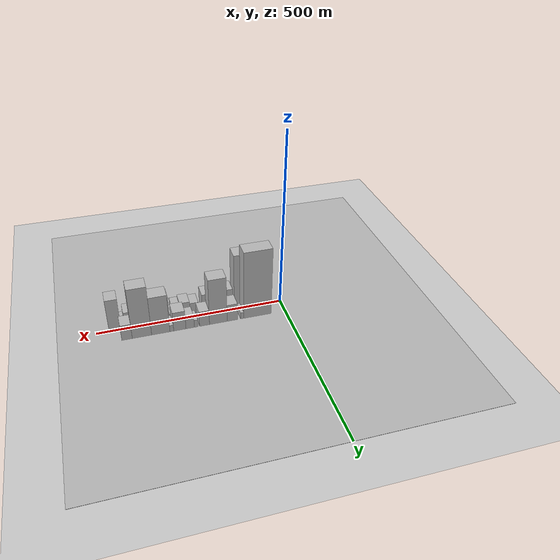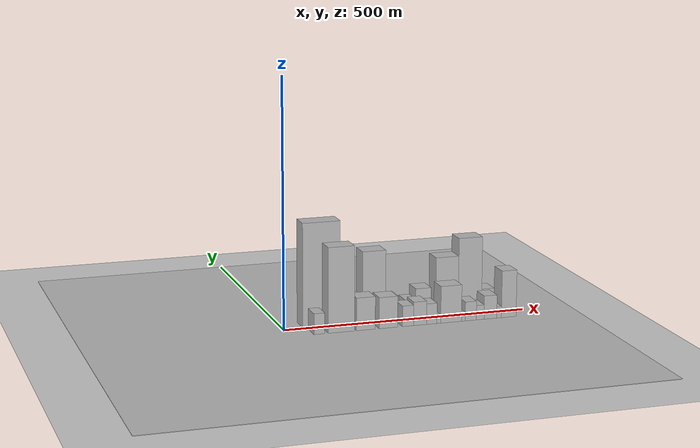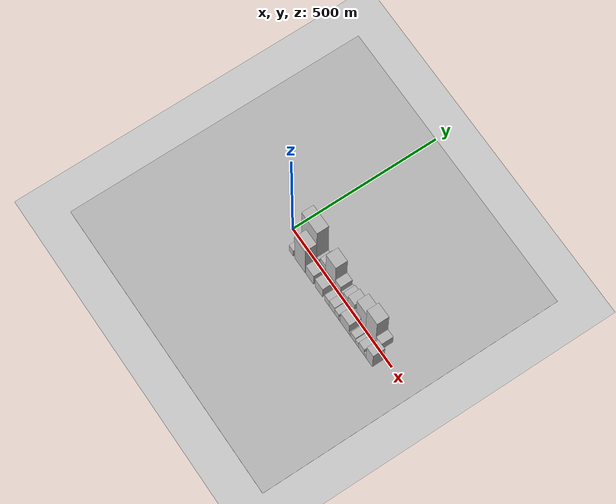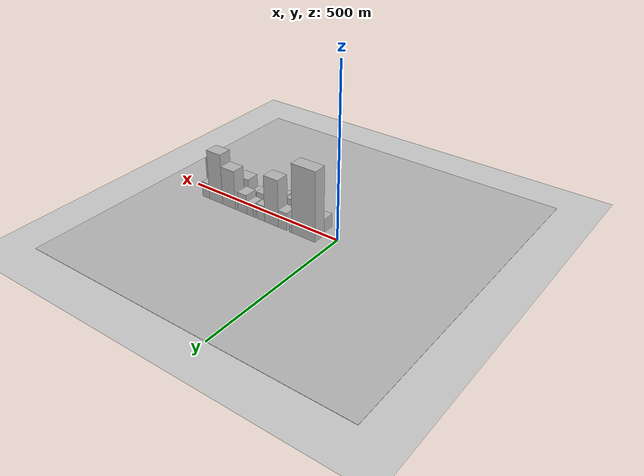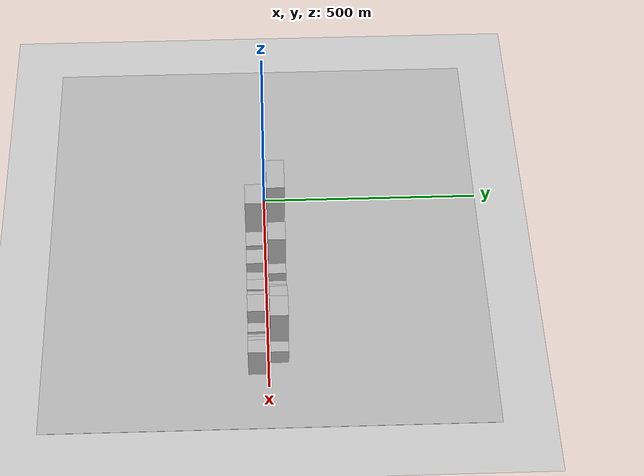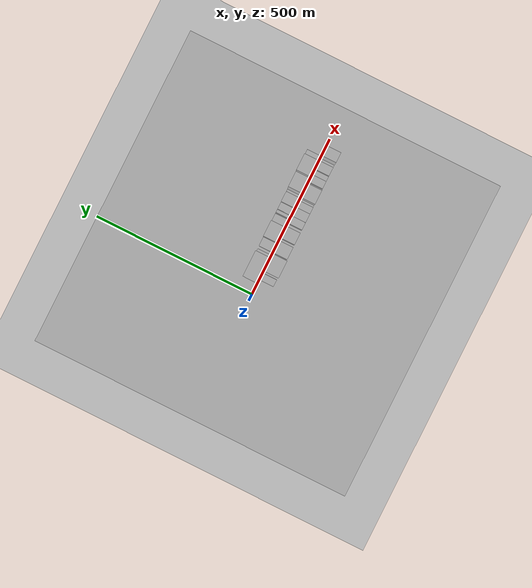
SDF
<?xml version="1.0" encoding="utf-8"?>

<sdf version="1.6">

   <world name="default">

      <gui fullscreen="0">

         <camera name="user_camera">

            <pose>-15 0 4.57585 0 0 0</pose>

            <view_controller>orbit</view_controller>

         </camera>

      </gui>

      <scene>

         <sky>

           <clouds>

             <speed>12</speed>

           </clouds>

         </sky>

         <ambient>0.4 0.4 0.4 1</ambient>

         <background>0.7 0.7 0.7 1</background>

         <shadows>1</shadows>

      </scene>

      <gravity>0 0 -9.8066</gravity>

      <magnetic_field>6e-06 2.3e-05 -4.2e-05</magnetic_field>

      <physics default="0" name="default_physics" type="ode">

         <ode>

            <solver>

               <type>quick</type>

               <iters>10</iters>

               <sor>1.0</sor>

               <use_dynamic_moi_rescaling>0</use_dynamic_moi_rescaling>

            </solver>

            <constraints>

               <cfm>0</cfm>

               <erp>0.2</erp>

               <contact_max_correcting_vel>100</contact_max_correcting_vel>

               <contact_surface_layer>0.001</contact_surface_layer>

            </constraints>

         </ode>

         <max_step_size>0.004</max_step_size>

         <real_time_factor>1</real_time_factor>

         <real_time_update_rate>250</real_time_update_rate>

      </physics>

      <light name="sun" type="directional">

         <cast_shadows>1</cast_shadows>

         <pose>0 0 10 0 0 0</pose>

         <diffuse>0.8 0.8 0.8 1</diffuse>

         <specular>0.2 0.2 0.2 1</specular>

         <attenuation>

            <range>1000</range>

            <constant>0.9</constant>

            <linear>0.01</linear>

            <quadratic>0.001</quadratic>

         </attenuation>

         <direction>-0.5 0.1 -0.9</direction>

      </light>

      <include>

         <name>ground_plane_1</name>

         <uri>model://HANNAS_ground_plane</uri>

         <pose>0 0 0  0 0 0</pose>

      </include>

      <include>

         <name>ground_plane_2</name>

         <uri>model://HANNAS_ground_plane</uri>

         <pose>100 0 0  0 0 0</pose>

      </include>

      <model name="building_1">

         <static>1</static>

         <pose frame="">78.3208 24.5000 0 0.000000 0.000000 1.570796</pose>

         <link name="link">

            <pose frame="">0 0 105.00 0 0 0</pose>

            <collision name="collision">

               <geometry>

                  <box>

                     <size>40.0000 76.6416 210.0000</size>

                  </box>

               </geometry>

               <max_contacts>10</max_contacts>

               <surface>

                  <contact>

                     <ode/>

                  </contact>

                  <bounce/>

                  <friction>

                     <torsional>

                        <ode/>

                     </torsional>

                     <ode/>

                  </friction>

               </surface>

            </collision>

            <visual name="visual">

               <cast_shadows>0</cast_shadows>

               <geometry>

                  <box>

                     <size>40.0000 76.6416 210.0000</size>

                  </box>

               </geometry>

               <material>

                  <script>

                     <uri>model://HANNAS_wall/materials/scripts</uri>

                     <uri>model://HANNAS_wall/materials/textures</uri>

                     <name>vrc/HANNAS_wall</name>

                  </script>

               </material>

            </visual>

            <self_collide>0</self_collide>

            <enable_wind>0</enable_wind>

            <kinematic>0</kinematic>

         </link>

      </model>

      <model name="building_2">

         <static>1</static>

         <pose frame="">121.1165 24.5000 0 0.000000 0.000000 1.570796</pose>

         <link name="link">

            <pose frame="">0 0 10.50 0 0 0</pose>

            <collision name="collision">

               <geometry>

                  <box>

                     <size>40.0000 8.9498 21.0000</size>

                  </box>

               </geometry>

               <max_contacts>10</max_contacts>

               <surface>

                  <contact>

                     <ode/>

                  </contact>

                  <bounce/>

                  <friction>

                     <torsional>

                        <ode/>

                     </torsional>

                     <ode/>

                  </friction>

               </surface>

            </collision>

            <visual name="visual">

               <cast_shadows>0</cast_shadows>

               <geometry>

                  <box>

                     <size>40.0000 8.9498 21.0000</size>

                  </box>

               </geometry>

               <material>

                  <script>

                     <uri>model://HANNAS_wall/materials/scripts</uri>

                     <uri>model://HANNAS_wall/materials/textures</uri>

                     <name>vrc/HANNAS_wall</name>

                  </script>

               </material>

            </visual>

            <self_collide>0</self_collide>

            <enable_wind>0</enable_wind>

            <kinematic>0</kinematic>

         </link>

      </model>

      <model name="building_3">

         <static>1</static>

         <pose frame="">147.8958 24.5000 0 0.000000 0.000000 1.570796</pose>

         <link name="link">

            <pose frame="">0 0 27.00 0 0 0</pose>

            <collision name="collision">

               <geometry>

                  <box>

                     <size>40.0000 28.6089 54.0000</size>

                  </box>

               </geometry>

               <max_contacts>10</max_contacts>

               <surface>

                  <contact>

                     <ode/>

                  </contact>

                  <bounce/>

                  <friction>

                     <torsional>

                        <ode/>

                     </torsional>

                     <ode/>

                  </friction>

               </surface>

            </collision>

            <visual name="visual">

               <cast_shadows>0</cast_shadows>

               <geometry>

                  <box>

                     <size>40.0000 28.6089 54.0000</size>

                  </box>

               </geometry>

               <material>

                  <script>

                     <uri>model://HANNAS_wall/materials/scripts</uri>

                     <uri>model://HANNAS_wall/materials/textures</uri>

                     <name>vrc/HANNAS_wall</name>

                  </script>

               </material>

            </visual>

            <self_collide>0</self_collide>

            <enable_wind>0</enable_wind>

            <kinematic>0</kinematic>

         </link>

      </model>

      <model name="building_4">

         <static>1</static>

         <pose frame="">186.2172 24.5000 0 0.000000 0.000000 1.570796</pose>

         <link name="link">

            <pose frame="">0 0 72.00 0 0 0</pose>

            <collision name="collision">

               <geometry>

                  <box>

                     <size>40.0000 48.0339 144.0000</size>

                  </box>

               </geometry>

               <max_contacts>10</max_contacts>

               <surface>

                  <contact>

                     <ode/>

                  </contact>

                  <bounce/>

                  <friction>

                     <torsional>

                        <ode/>

                     </torsional>

                     <ode/>

                  </friction>

               </surface>

            </collision>

            <visual name="visual">

               <cast_shadows>0</cast_shadows>

               <geometry>

                  <box>

                     <size>40.0000 48.0339 144.0000</size>

                  </box>

               </geometry>

               <material>

                  <script>

                     <uri>model://HANNAS_wall/materials/scripts</uri>

                     <uri>model://HANNAS_wall/materials/textures</uri>

                     <name>vrc/HANNAS_wall</name>

                  </script>

               </material>

            </visual>

            <self_collide>0</self_collide>

            <enable_wind>0</enable_wind>

            <kinematic>0</kinematic>

         </link>

      </model>

      <model name="building_5">

         <static>1</static>

         <pose frame="">223.6654 24.5000 0 0.000000 0.000000 1.570796</pose>

         <link name="link">

            <pose frame="">0 0 24.00 0 0 0</pose>

            <collision name="collision">

               <geometry>

                  <box>

                     <size>40.0000 26.8624 48.0000</size>

                  </box>

               </geometry>

               <max_contacts>10</max_contacts>

               <surface>

                  <contact>

                     <ode/>

                  </contact>

                  <bounce/>

                  <friction>

                     <torsional>

                        <ode/>

                     </torsional>

                     <ode/>

                  </friction>

               </surface>

            </collision>

            <visual name="visual">

               <cast_shadows>0</cast_shadows>

               <geometry>

                  <box>

                     <size>40.0000 26.8624 48.0000</size>

                  </box>

               </geometry>

               <material>

                  <script>

                     <uri>model://HANNAS_wall/materials/scripts</uri>

                     <uri>model://HANNAS_wall/materials/textures</uri>

                     <name>vrc/HANNAS_wall</name>

                  </script>

               </material>

            </visual>

            <self_collide>0</self_collide>

            <enable_wind>0</enable_wind>

            <kinematic>0</kinematic>

         </link>

      </model>

      <model name="building_6">

         <static>1</static>

         <pose frame="">246.1010 24.5000 0 0.000000 0.000000 1.570796</pose>

         <link name="link">

            <pose frame="">0 0 12.00 0 0 0</pose>

            <collision name="collision">

               <geometry>

                  <box>

                     <size>40.0000 10.0088 24.0000</size>

                  </box>

               </geometry>

               <max_contacts>10</max_contacts>

               <surface>

                  <contact>

                     <ode/>

                  </contact>

                  <bounce/>

                  <friction>

                     <torsional>

                        <ode/>

                     </torsional>

                     <ode/>

                  </friction>

               </surface>

            </collision>

            <visual name="visual">

               <cast_shadows>0</cast_shadows>

               <geometry>

                  <box>

                     <size>40.0000 10.0088 24.0000</size>

                  </box>

               </geometry>

               <material>

                  <script>

                     <uri>model://HANNAS_wall/materials/scripts</uri>

                     <uri>model://HANNAS_wall/materials/textures</uri>

                     <name>vrc/HANNAS_wall</name>

                  </script>

               </material>

            </visual>

            <self_collide>0</self_collide>

            <enable_wind>0</enable_wind>

            <kinematic>0</kinematic>

         </link>

      </model>

      <model name="building_7">

         <static>1</static>

         <pose frame="">262.2729 24.5000 0 0.000000 0.000000 1.570796</pose>

         <link name="link">

            <pose frame="">0 0 19.50 0 0 0</pose>

            <collision name="collision">

               <geometry>

                  <box>

                     <size>40.0000 22.3350 39.0000</size>

                  </box>

               </geometry>

               <max_contacts>10</max_contacts>

               <surface>

                  <contact>

                     <ode/>

                  </contact>

                  <bounce/>

                  <friction>

                     <torsional>

                        <ode/>

                     </torsional>

                     <ode/>

                  </friction>

               </surface>

            </collision>

            <visual name="visual">

               <cast_shadows>0</cast_shadows>

               <geometry>

                  <box>

                     <size>40.0000 22.3350 39.0000</size>

                  </box>

               </geometry>

               <material>

                  <script>

                     <uri>model://HANNAS_wall/materials/scripts</uri>

                     <uri>model://HANNAS_wall/materials/textures</uri>

                     <name>vrc/HANNAS_wall</name>

                  </script>

               </material>

            </visual>

            <self_collide>0</self_collide>

            <enable_wind>0</enable_wind>

            <kinematic>0</kinematic>

         </link>

      </model>

      <model name="building_8">

         <static>1</static>

         <pose frame="">289.6527 24.5000 0 0.000000 0.000000 1.570796</pose>

         <link name="link">

            <pose frame="">0 0 30.00 0 0 0</pose>

            <collision name="collision">

               <geometry>

                  <box>

                     <size>40.0000 32.4248 60.0000</size>

                  </box>

               </geometry>

               <max_contacts>10</max_contacts>

               <surface>

                  <contact>

                     <ode/>

                  </contact>

                  <bounce/>

                  <friction>

                     <torsional>

                        <ode/>

                     </torsional>

                     <ode/>

                  </friction>

               </surface>

            </collision>

            <visual name="visual">

               <cast_shadows>0</cast_shadows>

               <geometry>

                  <box>

                     <size>40.0000 32.4248 60.0000</size>

                  </box>

               </geometry>

               <material>

                  <script>

                     <uri>model://HANNAS_wall/materials/scripts</uri>

                     <uri>model://HANNAS_wall/materials/textures</uri>

                     <name>vrc/HANNAS_wall</name>

                  </script>

               </material>

            </visual>

            <self_collide>0</self_collide>

            <enable_wind>0</enable_wind>

            <kinematic>0</kinematic>

         </link>

      </model>

      <model name="building_9">

         <static>1</static>

         <pose frame="">310.7934 24.5000 0 0.000000 0.000000 1.570796</pose>

         <link name="link">

            <pose frame="">0 0 10.50 0 0 0</pose>

            <collision name="collision">

               <geometry>

                  <box>

                     <size>40.0000 9.8566 21.0000</size>

                  </box>

               </geometry>

               <max_contacts>10</max_contacts>

               <surface>

                  <contact>

                     <ode/>

                  </contact>

                  <bounce/>

                  <friction>

                     <torsional>

                        <ode/>

                     </torsional>

                     <ode/>

                  </friction>

               </surface>

            </collision>

            <visual name="visual">

               <cast_shadows>0</cast_shadows>

               <geometry>

                  <box>

                     <size>40.0000 9.8566 21.0000</size>

                  </box>

               </geometry>

               <material>

                  <script>

                     <uri>model://HANNAS_wall/materials/scripts</uri>

                     <uri>model://HANNAS_wall/materials/textures</uri>

                     <name>vrc/HANNAS_wall</name>

                  </script>

               </material>

            </visual>

            <self_collide>0</self_collide>

            <enable_wind>0</enable_wind>

            <kinematic>0</kinematic>

         </link>

      </model>

      <model name="building_10">

         <static>1</static>

         <pose frame="">339.5127 24.5000 0 0.000000 0.000000 1.570796</pose>

         <link name="link">

            <pose frame="">0 0 60.00 0 0 0</pose>

            <collision name="collision">

               <geometry>

                  <box>

                     <size>40.0000 47.5821 120.0000</size>

                  </box>

               </geometry>

               <max_contacts>10</max_contacts>

               <surface>

                  <contact>

                     <ode/>

                  </contact>

                  <bounce/>

                  <friction>

                     <torsional>

                        <ode/>

                     </torsional>

                     <ode/>

                  </friction>

               </surface>

            </collision>

            <visual name="visual">

               <cast_shadows>0</cast_shadows>

               <geometry>

                  <box>

                     <size>40.0000 47.5821 120.0000</size>

                  </box>

               </geometry>

               <material>

                  <script>

                     <uri>model://HANNAS_wall/materials/scripts</uri>

                     <uri>model://HANNAS_wall/materials/textures</uri>

                     <name>vrc/HANNAS_wall</name>

                  </script>

               </material>

            </visual>

            <self_collide>0</self_collide>

            <enable_wind>0</enable_wind>

            <kinematic>0</kinematic>

         </link>

      </model>

      <model name="building_11">

         <static>1</static>

         <pose frame="">388.2633 24.5000 0 0.000000 0.000000 1.570796</pose>

         <link name="link">

            <pose frame="">0 0 78.00 0 0 0</pose>

            <collision name="collision">

               <geometry>

                  <box>

                     <size>40.0000 49.9190 156.0000</size>

                  </box>

               </geometry>

               <max_contacts>10</max_contacts>

               <surface>

                  <contact>

                     <ode/>

                  </contact>

                  <bounce/>

                  <friction>

                     <torsional>

                        <ode/>

                     </torsional>

                     <ode/>

                  </friction>

               </surface>

            </collision>

            <visual name="visual">

               <cast_shadows>0</cast_shadows>

               <geometry>

                  <box>

                     <size>40.0000 49.9190 156.0000</size>

                  </box>

               </geometry>

               <material>

                  <script>

                     <uri>model://HANNAS_wall/materials/scripts</uri>

                     <uri>model://HANNAS_wall/materials/textures</uri>

                     <name>vrc/HANNAS_wall</name>

                  </script>

               </material>

            </visual>

            <self_collide>0</self_collide>

            <enable_wind>0</enable_wind>

            <kinematic>0</kinematic>

         </link>

      </model>

      <model name="building_12">

         <static>1</static>

         <pose frame="">426.5373 24.5000 0 0.000000 0.000000 1.570796</pose>

         <link name="link">

            <pose frame="">0 0 24.00 0 0 0</pose>

            <collision name="collision">

               <geometry>

                  <box>

                     <size>40.0000 26.6289 48.0000</size>

                  </box>

               </geometry>

               <max_contacts>10</max_contacts>

               <surface>

                  <contact>

                     <ode/>

                  </contact>

                  <bounce/>

                  <friction>

                     <torsional>

                        <ode/>

                     </torsional>

                     <ode/>

                  </friction>

               </surface>

            </collision>

            <visual name="visual">

               <cast_shadows>0</cast_shadows>

               <geometry>

                  <box>

                     <size>40.0000 26.6289 48.0000</size>

                  </box>

               </geometry>

               <material>

                  <script>

                     <uri>model://HANNAS_wall/materials/scripts</uri>

                     <uri>model://HANNAS_wall/materials/textures</uri>

                     <name>vrc/HANNAS_wall</name>

                  </script>

               </material>

            </visual>

            <self_collide>0</self_collide>

            <enable_wind>0</enable_wind>

            <kinematic>0</kinematic>

         </link>

      </model>

      <model name="building_13">

         <static>1</static>

         <pose frame="">58.9713 -24.5000 0 0.000000 0.000000 1.570796</pose>

         <link name="link">

            <pose frame="">0 0 21.00 0 0 0</pose>

            <collision name="collision">

               <geometry>

                  <box>

                     <size>40.0000 21.9426 42.0000</size>

                  </box>

               </geometry>

               <max_contacts>10</max_contacts>

               <surface>

                  <contact>

                     <ode/>

                  </contact>

                  <bounce/>

                  <friction>

                     <torsional>

                        <ode/>

                     </torsional>

                     <ode/>

                  </friction>

               </surface>

            </collision>

            <visual name="visual">

               <cast_shadows>0</cast_shadows>

               <geometry>

                  <box>

                     <size>40.0000 21.9426 42.0000</size>

                  </box>

               </geometry>

               <material>

                  <script>

                     <uri>model://HANNAS_wall/materials/scripts</uri>

                     <uri>model://HANNAS_wall/materials/textures</uri>

                     <name>vrc/HANNAS_wall</name>

                  </script>

               </material>

            </visual>

            <self_collide>0</self_collide>

            <enable_wind>0</enable_wind>

            <kinematic>0</kinematic>

         </link>

      </model>

      <model name="building_14">

         <static>1</static>

         <pose frame="">103.4341 -24.5000 0 0.000000 0.000000 1.570796</pose>

         <link name="link">

            <pose frame="">0 0 85.50 0 0 0</pose>

            <collision name="collision">

               <geometry>

                  <box>

                     <size>40.0000 52.9830 171.0000</size>

                  </box>

               </geometry>

               <max_contacts>10</max_contacts>

               <surface>

                  <contact>

                     <ode/>

                  </contact>

                  <bounce/>

                  <friction>

                     <torsional>

                        <ode/>

                     </torsional>

                     <ode/>

                  </friction>

               </surface>

            </collision>

            <visual name="visual">

               <cast_shadows>0</cast_shadows>

               <geometry>

                  <box>

                     <size>40.0000 52.9830 171.0000</size>

                  </box>

               </geometry>

               <material>

                  <script>

                     <uri>model://HANNAS_wall/materials/scripts</uri>

                     <uri>model://HANNAS_wall/materials/textures</uri>

                     <name>vrc/HANNAS_wall</name>

                  </script>

               </material>

            </visual>

            <self_collide>0</self_collide>

            <enable_wind>0</enable_wind>

            <kinematic>0</kinematic>

         </link>

      </model>

      <model name="building_15">

         <static>1</static>

         <pose frame="">153.2630 -24.5000 0 0.000000 0.000000 1.570796</pose>

         <link name="link">

            <pose frame="">0 0 33.00 0 0 0</pose>

            <collision name="collision">

               <geometry>

                  <box>

                     <size>40.0000 38.6747 66.0000</size>

                  </box>

               </geometry>

               <max_contacts>10</max_contacts>

               <surface>

                  <contact>

                     <ode/>

                  </contact>

                  <bounce/>

                  <friction>

                     <torsional>

                        <ode/>

                     </torsional>

                     <ode/>

                  </friction>

               </surface>

            </collision>

            <visual name="visual">

               <cast_shadows>0</cast_shadows>

               <geometry>

                  <box>

                     <size>40.0000 38.6747 66.0000</size>

                  </box>

               </geometry>

               <material>

                  <script>

                     <uri>model://HANNAS_wall/materials/scripts</uri>

                     <uri>model://HANNAS_wall/materials/textures</uri>

                     <name>vrc/HANNAS_wall</name>

                  </script>

               </material>

            </visual>

            <self_collide>0</self_collide>

            <enable_wind>0</enable_wind>

            <kinematic>0</kinematic>

         </link>

      </model>

      <model name="building_16">

         <static>1</static>

         <pose frame="">199.4692 -24.5000 0 0.000000 0.000000 1.570796</pose>

         <link name="link">

            <pose frame="">0 0 31.50 0 0 0</pose>

            <collision name="collision">

               <geometry>

                  <box>

                     <size>40.0000 37.7379 63.0000</size>

                  </box>

               </geometry>

               <max_contacts>10</max_contacts>

               <surface>

                  <contact>

                     <ode/>

                  </contact>

                  <bounce/>

                  <friction>

                     <torsional>

                        <ode/>

                     </torsional>

                     <ode/>

                  </friction>

               </surface>

            </collision>

            <visual name="visual">

               <cast_shadows>0</cast_shadows>

               <geometry>

                  <box>

                     <size>40.0000 37.7379 63.0000</size>

                  </box>

               </geometry>

               <material>

                  <script>

                     <uri>model://HANNAS_wall/materials/scripts</uri>

                     <uri>model://HANNAS_wall/materials/textures</uri>

                     <name>vrc/HANNAS_wall</name>

                  </script>

               </material>

            </visual>

            <self_collide>0</self_collide>

            <enable_wind>0</enable_wind>

            <kinematic>0</kinematic>

         </link>

      </model>

      <model name="building_17">

         <static>1</static>

         <pose frame="">240.0087 -24.5000 0 0.000000 0.000000 1.570796</pose>

         <link name="link">

            <pose frame="">0 0 21.00 0 0 0</pose>

            <collision name="collision">

               <geometry>

                  <box>

                     <size>40.0000 23.3411 42.0000</size>

                  </box>

               </geometry>

               <max_contacts>10</max_contacts>

               <surface>

                  <contact>

                     <ode/>

                  </contact>

                  <bounce/>

                  <friction>

                     <torsional>

                        <ode/>

                     </torsional>

                     <ode/>

                  </friction>

               </surface>

            </collision>

            <visual name="visual">

               <cast_shadows>0</cast_shadows>

               <geometry>

                  <box>

                     <size>40.0000 23.3411 42.0000</size>

                  </box>

               </geometry>

               <material>

                  <script>

                     <uri>model://HANNAS_wall/materials/scripts</uri>

                     <uri>model://HANNAS_wall/materials/textures</uri>

                     <name>vrc/HANNAS_wall</name>

                  </script>

               </material>

            </visual>

            <self_collide>0</self_collide>

            <enable_wind>0</enable_wind>

            <kinematic>0</kinematic>

         </link>

      </model>

      <model name="building_18">

         <static>1</static>

         <pose frame="">265.1928 -24.5000 0 0.000000 0.000000 1.570796</pose>

         <link name="link">

            <pose frame="">0 0 24.00 0 0 0</pose>

            <collision name="collision">

               <geometry>

                  <box>

                     <size>40.0000 27.0270 48.0000</size>

                  </box>

               </geometry>

               <max_contacts>10</max_contacts>

               <surface>

                  <contact>

                     <ode/>

                  </contact>

                  <bounce/>

                  <friction>

                     <torsional>

                        <ode/>

                     </torsional>

                     <ode/>

                  </friction>

               </surface>

            </collision>

            <visual name="visual">

               <cast_shadows>0</cast_shadows>

               <geometry>

                  <box>

                     <size>40.0000 27.0270 48.0000</size>

                  </box>

               </geometry>

               <material>

                  <script>

                     <uri>model://HANNAS_wall/materials/scripts</uri>

                     <uri>model://HANNAS_wall/materials/textures</uri>

                     <name>vrc/HANNAS_wall</name>

                  </script>

               </material>

            </visual>

            <self_collide>0</self_collide>

            <enable_wind>0</enable_wind>

            <kinematic>0</kinematic>

         </link>

      </model>

      <model name="building_19">

         <static>1</static>

         <pose frame="">289.4259 -24.5000 0 0.000000 0.000000 1.570796</pose>

         <link name="link">

            <pose frame="">0 0 21.00 0 0 0</pose>

            <collision name="collision">

               <geometry>

                  <box>

                     <size>40.0000 21.4391 42.0000</size>

                  </box>

               </geometry>

               <max_contacts>10</max_contacts>

               <surface>

                  <contact>

                     <ode/>

                  </contact>

                  <bounce/>

                  <friction>

                     <torsional>

                        <ode/>

                     </torsional>

                     <ode/>

                  </friction>

               </surface>

            </collision>

            <visual name="visual">

               <cast_shadows>0</cast_shadows>

               <geometry>

                  <box>

                     <size>40.0000 21.4391 42.0000</size>

                  </box>

               </geometry>

               <material>

                  <script>

                     <uri>model://HANNAS_wall/materials/scripts</uri>

                     <uri>model://HANNAS_wall/materials/textures</uri>

                     <name>vrc/HANNAS_wall</name>

                  </script>

               </material>

            </visual>

            <self_collide>0</self_collide>

            <enable_wind>0</enable_wind>

            <kinematic>0</kinematic>

         </link>

      </model>

      <model name="building_20">

         <static>1</static>

         <pose frame="">304.1029 -24.5000 0 0.000000 0.000000 1.570796</pose>

         <link name="link">

            <pose frame="">0 0 9.00 0 0 0</pose>

            <collision name="collision">

               <geometry>

                  <box>

                     <size>40.0000 7.9149 18.0000</size>

                  </box>

               </geometry>

               <max_contacts>10</max_contacts>

               <surface>

                  <contact>

                     <ode/>

                  </contact>

                  <bounce/>

                  <friction>

                     <torsional>

                        <ode/>

                     </torsional>

                     <ode/>

                  </friction>

               </surface>

            </collision>

            <visual name="visual">

               <cast_shadows>0</cast_shadows>

               <geometry>

                  <box>

                     <size>40.0000 7.9149 18.0000</size>

                  </box>

               </geometry>

               <material>

                  <script>

                     <uri>model://HANNAS_wall/materials/scripts</uri>

                     <uri>model://HANNAS_wall/materials/textures</uri>

                     <name>vrc/HANNAS_wall</name>

                  </script>

               </material>

            </visual>

            <self_collide>0</self_collide>

            <enable_wind>0</enable_wind>

            <kinematic>0</kinematic>

         </link>

      </model>

      <model name="building_21">

         <static>1</static>

         <pose frame="">329.9495 -24.5000 0 0.000000 0.000000 1.570796</pose>

         <link name="link">

            <pose frame="">0 0 37.50 0 0 0</pose>

            <collision name="collision">

               <geometry>

                  <box>

                     <size>40.0000 43.7782 75.0000</size>

                  </box>

               </geometry>

               <max_contacts>10</max_contacts>

               <surface>

                  <contact>

                     <ode/>

                  </contact>

                  <bounce/>

                  <friction>

                     <torsional>

                        <ode/>

                     </torsional>

                     <ode/>

                  </friction>

               </surface>

            </collision>

            <visual name="visual">

               <cast_shadows>0</cast_shadows>

               <geometry>

                  <box>

                     <size>40.0000 43.7782 75.0000</size>

                  </box>

               </geometry>

               <material>

                  <script>

                     <uri>model://HANNAS_wall/materials/scripts</uri>

                     <uri>model://HANNAS_wall/materials/textures</uri>

                     <name>vrc/HANNAS_wall</name>

                  </script>

               </material>

            </visual>

            <self_collide>0</self_collide>

            <enable_wind>0</enable_wind>

            <kinematic>0</kinematic>

         </link>

      </model>

      <model name="building_22">

         <static>1</static>

         <pose frame="">355.7436 -24.5000 0 0.000000 0.000000 1.570796</pose>

         <link name="link">

            <pose frame="">0 0 9.00 0 0 0</pose>

            <collision name="collision">

               <geometry>

                  <box>

                     <size>40.0000 7.8101 18.0000</size>

                  </box>

               </geometry>

               <max_contacts>10</max_contacts>

               <surface>

                  <contact>

                     <ode/>

                  </contact>

                  <bounce/>

                  <friction>

                     <torsional>

                        <ode/>

                     </torsional>

                     <ode/>

                  </friction>

               </surface>

            </collision>

            <visual name="visual">

               <cast_shadows>0</cast_shadows>

               <geometry>

                  <box>

                     <size>40.0000 7.8101 18.0000</size>

                  </box>

               </geometry>

               <material>

                  <script>

                     <uri>model://HANNAS_wall/materials/scripts</uri>

                     <uri>model://HANNAS_wall/materials/textures</uri>

                     <name>vrc/HANNAS_wall</name>

                  </script>

               </material>

            </visual>

            <self_collide>0</self_collide>

            <enable_wind>0</enable_wind>

            <kinematic>0</kinematic>

         </link>

      </model>

      <model name="building_23">

         <static>1</static>

         <pose frame="">371.3393 -24.5000 0 0.000000 0.000000 1.570796</pose>

         <link name="link">

            <pose frame="">0 0 19.50 0 0 0</pose>

            <collision name="collision">

               <geometry>

                  <box>

                     <size>40.0000 23.3813 39.0000</size>

                  </box>

               </geometry>

               <max_contacts>10</max_contacts>

               <surface>

                  <contact>

                     <ode/>

                  </contact>

                  <bounce/>

                  <friction>

                     <torsional>

                        <ode/>

                     </torsional>

                     <ode/>

                  </friction>

               </surface>

            </collision>

            <visual name="visual">

               <cast_shadows>0</cast_shadows>

               <geometry>

                  <box>

                     <size>40.0000 23.3813 39.0000</size>

                  </box>

               </geometry>

               <material>

                  <script>

                     <uri>model://HANNAS_wall/materials/scripts</uri>

                     <uri>model://HANNAS_wall/materials/textures</uri>

                     <name>vrc/HANNAS_wall</name>

                  </script>

               </material>

            </visual>

            <self_collide>0</self_collide>

            <enable_wind>0</enable_wind>

            <kinematic>0</kinematic>

         </link>

      </model>

      <model name="building_24">

         <static>1</static>

         <pose frame="">391.2771 -24.5000 0 0.000000 0.000000 1.570796</pose>

         <link name="link">

            <pose frame="">0 0 15.00 0 0 0</pose>

            <collision name="collision">

               <geometry>

                  <box>

                     <size>40.0000 16.4942 30.0000</size>

                  </box>

               </geometry>

               <max_contacts>10</max_contacts>

               <surface>

                  <contact>

                     <ode/>

                  </contact>

                  <bounce/>

                  <friction>

                     <torsional>

                        <ode/>

                     </torsional>

                     <ode/>

                  </friction>

               </surface>

            </collision>

            <visual name="visual">

               <cast_shadows>0</cast_shadows>

               <geometry>

                  <box>

                     <size>40.0000 16.4942 30.0000</size>

                  </box>

               </geometry>

               <material>

                  <script>

                     <uri>model://HANNAS_wall/materials/scripts</uri>

                     <uri>model://HANNAS_wall/materials/textures</uri>

                     <name>vrc/HANNAS_wall</name>

                  </script>

               </material>

            </visual>

            <self_collide>0</self_collide>

            <enable_wind>0</enable_wind>

            <kinematic>0</kinematic>

         </link>

      </model>

      <model name="building_25">

         <static>1</static>

         <pose frame="">412.9969 -24.5000 0 0.000000 0.000000 1.570796</pose>

         <link name="link">

            <pose frame="">0 0 24.00 0 0 0</pose>

            <collision name="collision">

               <geometry>

                  <box>

                     <size>40.0000 26.9454 48.0000</size>

                  </box>

               </geometry>

               <max_contacts>10</max_contacts>

               <surface>

                  <contact>

                     <ode/>

                  </contact>

                  <bounce/>

                  <friction>

                     <torsional>

                        <ode/>

                     </torsional>

                     <ode/>

                  </friction>

               </surface>

            </collision>

            <visual name="visual">

               <cast_shadows>0</cast_shadows>

               <geometry>

                  <box>

                     <size>40.0000 26.9454 48.0000</size>

                  </box>

               </geometry>

               <material>

                  <script>

                     <uri>model://HANNAS_wall/materials/scripts</uri>

                     <uri>model://HANNAS_wall/materials/textures</uri>

                     <name>vrc/HANNAS_wall</name>

                  </script>

               </material>

            </visual>

            <self_collide>0</self_collide>

            <enable_wind>0</enable_wind>

            <kinematic>0</kinematic>

         </link>

      </model>

      <model name="building_26">

         <static>1</static>

         <pose frame="">431.4201 -24.5000 0 0.000000 0.000000 1.570796</pose>

         <link name="link">

            <pose frame="">0 0 12.00 0 0 0</pose>

            <collision name="collision">

               <geometry>

                  <box>

                     <size>40.0000 9.9010 24.0000</size>

                  </box>

               </geometry>

               <max_contacts>10</max_contacts>

               <surface>

                  <contact>

                     <ode/>

                  </contact>

                  <bounce/>

                  <friction>

                     <torsional>

                        <ode/>

                     </torsional>

                     <ode/>

                  </friction>

               </surface>

            </collision>

            <visual name="visual">

               <cast_shadows>0</cast_shadows>

               <geometry>

                  <box>

                     <size>40.0000 9.9010 24.0000</size>

                  </box>

               </geometry>

               <material>

                  <script>

                     <uri>model://HANNAS_wall/materials/scripts</uri>

                     <uri>model://HANNAS_wall/materials/textures</uri>

                     <name>vrc/HANNAS_wall</name>

                  </script>

               </material>

            </visual>

            <self_collide>0</self_collide>

            <enable_wind>0</enable_wind>

            <kinematic>0</kinematic>

         </link>

      </model>

      <model name="building_27">

         <static>1</static>

         <pose frame="">452.1333 -24.5000 0 0.000000 0.000000 1.570796</pose>

         <link name="link">

            <pose frame="">0 0 48.00 0 0 0</pose>

            <collision name="collision">

               <geometry>

                  <box>

                     <size>40.0000 31.5254 96.0000</size>

                  </box>

               </geometry>

               <max_contacts>10</max_contacts>

               <surface>

                  <contact>

                     <ode/>

                  </contact>

                  <bounce/>

                  <friction>

                     <torsional>

                        <ode/>

                     </torsional>

                     <ode/>

                  </friction>

               </surface>

            </collision>

            <visual name="visual">

               <cast_shadows>0</cast_shadows>

               <geometry>

                  <box>

                     <size>40.0000 31.5254 96.0000</size>

                  </box>

               </geometry>

               <material>

                  <script>

                     <uri>model://HANNAS_wall/materials/scripts</uri>

                     <uri>model://HANNAS_wall/materials/textures</uri>

                     <name>vrc/HANNAS_wall</name>

                  </script>

               </material>

            </visual>

            <self_collide>0</self_collide>

            <enable_wind>0</enable_wind>

            <kinematic>0</kinematic>

         </link>

      </model>

   </world>

</sdf>

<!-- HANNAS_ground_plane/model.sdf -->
<sdf version="1.4">
<model name="HANNAS_ground_plane">
  <static>true</static>
    <link name="link">
      <collision name="collision">
        <geometry>
          <plane>
            <normal>0 0 1</normal>
            <size>1000 1000</size>
          </plane>
        </geometry>
        <surface>
          <friction>
            <ode>
              <mu>100</mu>
              <mu2>50</mu2>
            </ode>
          </friction>
        </surface>
      </collision>
      <visual name="visual">
        <cast_shadows>false</cast_shadows>
        <geometry>
          <plane>
            <normal>0 0 1</normal>
            <size>1000 1000</size>
          </plane>
        </geometry>
        <material>
          <script>
            <uri>model://HANNAS_ground_plane/materials/scripts/HANNAS_ground_plane.material</uri>
	    <uri>model://HANNAS_ground_plane/materials/textures</uri>
            <name>HANNASGroundPlane/Image</name>
          </script>
        </material>
      </visual>
    </link>
  </model>
</sdf>
